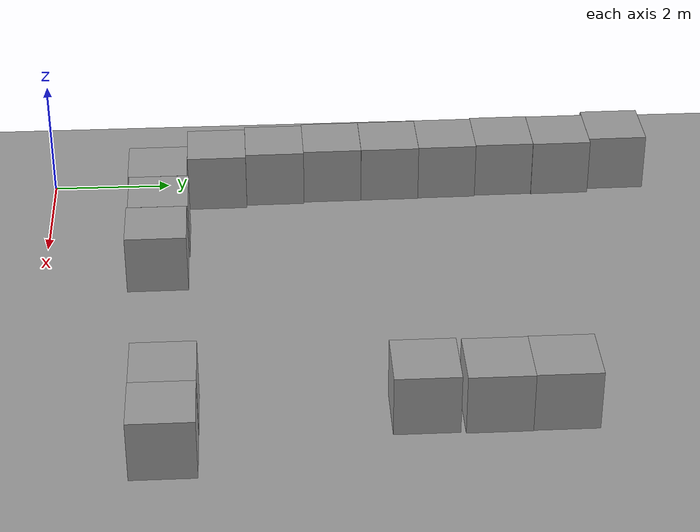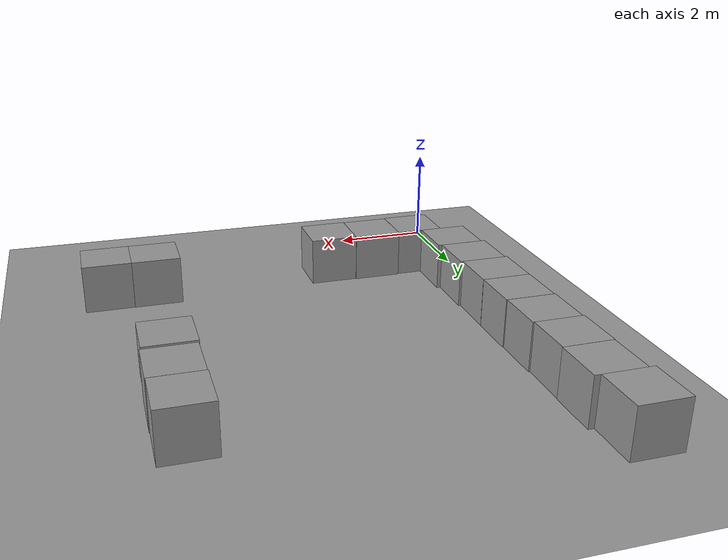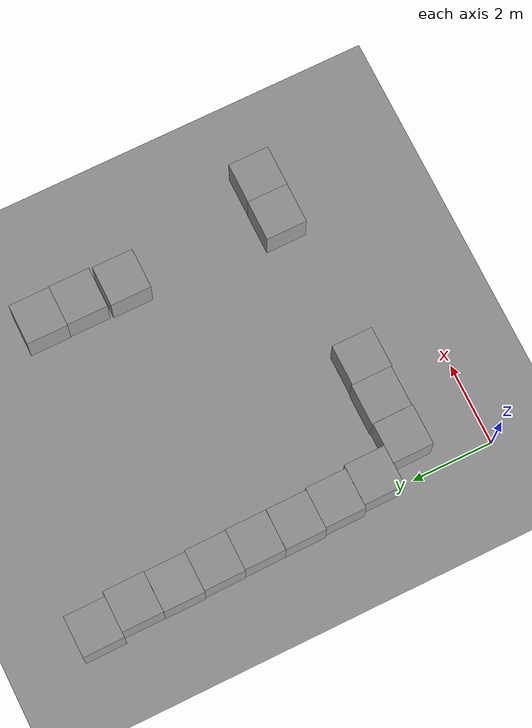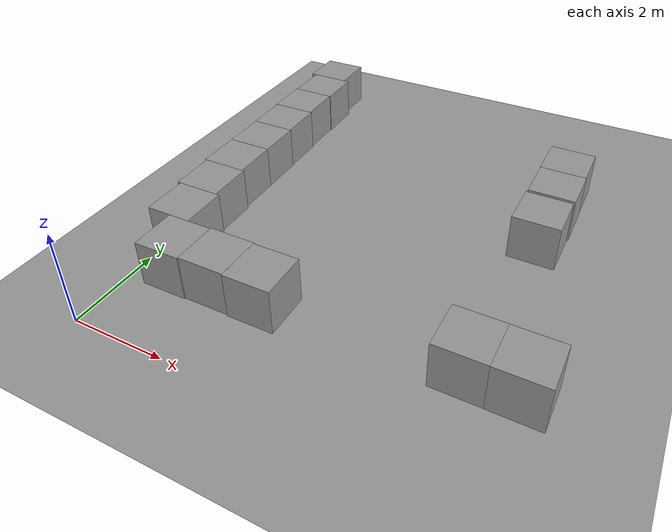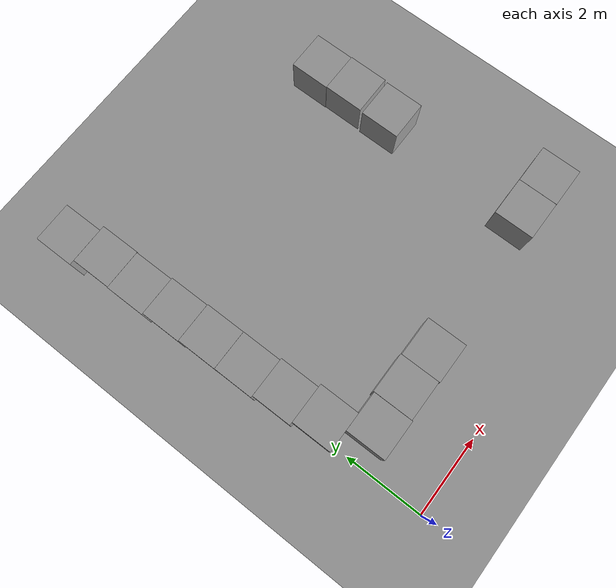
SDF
<sdf version="1.6">
 <world name="default">
  <light name="sun" type="directional">
   <pose>0 0 10 0 -0 0</pose>
   <diffuse>0.8 0.8 0.8 1</diffuse>
   <specular>0.2 0.2 0.2 1</specular>
   <attenuation>
    <range>1000</range>
    <constant>0.9</constant>
    <linear>0.01</linear>
    <quadratic>0.001</quadratic>
   </attenuation>
   <direction>0.5 0.1 -0.9</direction>
  </light>
  <scene><ambient>0.4 0.4 0.4 1</ambient><background>0.7 0.7 0.7 1</background><shadows>1</shadows></scene>
  <physics name="default_physics" default="0" type="ode">
   <max_step_size>0.01</max_step_size>
   <real_time_factor>1</real_time_factor>
   <real_time_update_rate>100</real_time_update_rate>
  </physics>
  <model name="ground_plane_0">
   <static>1</static>
   <link name="link">
    <collision name="collision">
     <geometry><plane><normal>0 0 1</normal><size>100 100</size></plane></geometry>
     <surface><friction><ode><mu>100</mu><mu2>50</mu2></ode></friction></surface>
    </collision>
    <visual name="visual">
     <cast_shadows>0</cast_shadows>
     <geometry><plane><normal>0 0 1</normal><size>100 100</size></plane></geometry>
     <material>
      <script><uri>file://media/materials/scripts/gazebo.material</uri><name>Gazebo/Grey</name></script>
     </material>
    </visual>
    <velocity_decay><linear>0</linear><angular>0</angular></velocity_decay>
   </link>
   <pose>0.497681 0 0 0 -0 0</pose>
  </model>
  <gravity>0 0 -9.8</gravity>
  <magnetic_field>6e-06 2.3e-05 -4.2e-05</magnetic_field>
  <atmosphere type="adiabatic"/>
  <spherical_coordinates>
   <surface_model>EARTH_WGS84</surface_model>
   <latitude_deg>0</latitude_deg>
   <longitude_deg>0</longitude_deg>
   <elevation>0</elevation>
   <heading_deg>0</heading_deg>
  </spherical_coordinates>
  <model name="unit_box">
   <pose>0.89352 1.86727 0.49907 -0.0001 -0 0.006548</pose>
   <link name="link">
    <inertial>
     <mass>1</mass>
     <inertia>
      <ixx>0.166667</ixx>
      <ixy>0</ixy>
      <ixz>0</ixz>
      <iyy>0.166667</iyy>
      <iyz>0</iyz>
      <izz>0.166667</izz>
     </inertia>
    </inertial>
    <collision name="collision"><geometry><box><size>1 1 1</size></box></geometry></collision>
    <visual name="visual">
     <geometry><box><size>1 1 1</size></box></geometry>
     <material>
      <script><name>Gazebo/Grey</name><uri>file://media/materials/scripts/gazebo.material</uri></script>
     </material>
    </visual>
   </link>
  </model>
  <model name="unit_box_0">
   <pose>1.89511 1.89559 0.49967 -0.00066 0 0.004577</pose>
   <link name="link">
    <inertial>
     <mass>1</mass>
     <inertia>
      <ixx>0.166667</ixx>
      <ixy>0</ixy>
      <ixz>0</ixz>
      <iyy>0.166667</iyy>
      <iyz>0</iyz>
      <izz>0.166667</izz>
     </inertia>
    </inertial>
    <collision name="collision"><geometry><box><size>1 1 1</size></box></geometry></collision>
    <visual name="visual">
     <geometry><box><size>1 1 1</size></box></geometry>
     <material>
      <script><name>Gazebo/Grey</name><uri>file://media/materials/scripts/gazebo.material</uri></script>
     </material>
    </visual>
   </link>
  </model>
  <model name="unit_box_1">
   <pose>2.89524 1.8778 0.49907 0.0001 -0 0.00458</pose>
   <link name="link">
    <inertial>
     <mass>1</mass>
     <inertia>
      <ixx>0.166667</ixx>
      <ixy>0</ixy>
      <ixz>0</ixz>
      <iyy>0.166667</iyy>
      <iyz>0</iyz>
      <izz>0.166667</izz>
     </inertia>
    </inertial>
    <collision name="collision"><geometry><box><size>1 1 1</size></box></geometry></collision>
    <visual name="visual">
     <geometry><box><size>1 1 1</size></box></geometry>
     <material>
      <script><name>Gazebo/Grey</name><uri>file://media/materials/scripts/gazebo.material</uri></script>
     </material>
    </visual>
   </link>
  </model>
  <model name="unit_box_2">
   <pose>0.338021 2.86476 0.49907 -0 0.0001 0.004741</pose>
   <link name="link">
    <inertial>
     <mass>1</mass>
     <inertia>
      <ixx>0.166667</ixx>
      <ixy>0</ixy>
      <ixz>0</ixz>
      <iyy>0.166667</iyy>
      <iyz>0</iyz>
      <izz>0.166667</izz>
     </inertia>
    </inertial>
    <collision name="collision"><geometry><box><size>1 1 1</size></box></geometry></collision>
    <visual name="visual">
     <geometry><box><size>1 1 1</size></box></geometry>
     <material>
      <script><name>Gazebo/Grey</name><uri>file://media/materials/scripts/gazebo.material</uri></script>
     </material>
    </visual>
   </link>
  </model>
  <model name="unit_box_3">
   <pose>0.254188 3.86526 0.49912 0 -0 0.004378</pose>
   <link name="link">
    <inertial>
     <mass>1</mass>
     <inertia>
      <ixx>0.166667</ixx>
      <ixy>0</ixy>
      <ixz>0</ixz>
      <iyy>0.166667</iyy>
      <iyz>0</iyz>
      <izz>0.166667</izz>
     </inertia>
    </inertial>
    <collision name="collision"><geometry><box><size>1 1 1</size></box></geometry></collision>
    <visual name="visual">
     <geometry><box><size>1 1 1</size></box></geometry>
     <material>
      <script><name>Gazebo/Grey</name><uri>file://media/materials/scripts/gazebo.material</uri></script>
     </material>
    </visual>
   </link>
  </model>
  <model name="unit_box_4">
   <pose>0.204664 4.86478 0.499716 0.000569 0 0.004364</pose>
   <link name="link">
    <inertial>
     <mass>1</mass>
     <inertia>
      <ixx>0.166667</ixx>
      <ixy>0</ixy>
      <ixz>0</ixz>
      <iyy>0.166667</iyy>
      <iyz>0</iyz>
      <izz>0.166667</izz>
     </inertia>
    </inertial>
    <collision name="collision"><geometry><box><size>1 1 1</size></box></geometry></collision>
    <visual name="visual">
     <geometry><box><size>1 1 1</size></box></geometry>
     <material>
      <script><name>Gazebo/Grey</name><uri>file://media/materials/scripts/gazebo.material</uri></script>
     </material>
    </visual>
   </link>
  </model>
  <model name="unit_box_5">
   <pose>0.196508 5.86583 0.5 0 -0 0.00512</pose>
   <link name="link">
    <inertial>
     <mass>1</mass>
     <inertia>
      <ixx>0.166667</ixx>
      <ixy>0</ixy>
      <ixz>0</ixz>
      <iyy>0.166667</iyy>
      <iyz>0</iyz>
      <izz>0.166667</izz>
     </inertia>
    </inertial>
    <collision name="collision"><geometry><box><size>1 1 1</size></box></geometry></collision>
    <visual name="visual">
     <geometry><box><size>1 1 1</size></box></geometry>
     <material>
      <script><name>Gazebo/Grey</name><uri>file://media/materials/scripts/gazebo.material</uri></script>
     </material>
    </visual>
   </link>
  </model>
  <model name="unit_box_6">
   <pose>0.173817 6.86657 0.49907 -0 0.0001 0.005935</pose>
   <link name="link">
    <inertial>
     <mass>1</mass>
     <inertia>
      <ixx>0.166667</ixx>
      <ixy>0</ixy>
      <ixz>0</ixz>
      <iyy>0.166667</iyy>
      <iyz>0</iyz>
      <izz>0.166667</izz>
     </inertia>
    </inertial>
    <collision name="collision"><geometry><box><size>1 1 1</size></box></geometry></collision>
    <visual name="visual">
     <geometry><box><size>1 1 1</size></box></geometry>
     <material>
      <script><name>Gazebo/Grey</name><uri>file://media/materials/scripts/gazebo.material</uri></script>
     </material>
    </visual>
   </link>
  </model>
  <model name="unit_box_7">
   <pose>0.138877 7.86643 0.49967 -0 0.00066 0.006008</pose>
   <link name="link">
    <inertial>
     <mass>1</mass>
     <inertia>
      <ixx>0.166667</ixx>
      <ixy>0</ixy>
      <ixz>0</ixz>
      <iyy>0.166667</iyy>
      <iyz>0</iyz>
      <izz>0.166667</izz>
     </inertia>
    </inertial>
    <collision name="collision"><geometry><box><size>1 1 1</size></box></geometry></collision>
    <visual name="visual">
     <geometry><box><size>1 1 1</size></box></geometry>
     <material>
      <script><name>Gazebo/Grey</name><uri>file://media/materials/scripts/gazebo.material</uri></script>
     </material>
    </visual>
   </link>
  </model>
  <model name="unit_box_8">
   <pose>0.14413 8.86741 0.49907 -0 0.0001 0.007384</pose>
   <link name="link">
    <inertial>
     <mass>1</mass>
     <inertia>
      <ixx>0.166667</ixx>
      <ixy>0</ixy>
      <ixz>0</ixz>
      <iyy>0.166667</iyy>
      <iyz>0</iyz>
      <izz>0.166667</izz>
     </inertia>
    </inertial>
    <collision name="collision"><geometry><box><size>1 1 1</size></box></geometry></collision>
    <visual name="visual">
     <geometry><box><size>1 1 1</size></box></geometry>
     <material>
      <script><name>Gazebo/Grey</name><uri>file://media/materials/scripts/gazebo.material</uri></script>
     </material>
    </visual>
   </link>
  </model>
  <model name="unit_box_9">
   <pose>0.018069 9.86664 0.49967 0 -0.00066 0.007414</pose>
   <link name="link">
    <inertial>
     <mass>1</mass>
     <inertia>
      <ixx>0.166667</ixx>
      <ixy>0</ixy>
      <ixz>0</ixz>
      <iyy>0.166667</iyy>
      <iyz>0</iyz>
      <izz>0.166667</izz>
     </inertia>
    </inertial>
    <collision name="collision"><geometry><box><size>1 1 1</size></box></geometry></collision>
    <visual name="visual">
     <geometry><box><size>1 1 1</size></box></geometry>
     <material>
      <script><name>Gazebo/Grey</name><uri>file://media/materials/scripts/gazebo.material</uri></script>
     </material>
    </visual>
   </link>
  </model>
  <model name="unit_box_10">
   <pose>6.79439 2.07227 0.49907 -0.0001 -0 3e-06</pose>
   <link name="link">
    <inertial>
     <mass>1</mass>
     <inertia>
      <ixx>0.166667</ixx>
      <ixy>0</ixy>
      <ixz>0</ixz>
      <iyy>0.166667</iyy>
      <iyz>0</iyz>
      <izz>0.166667</izz>
     </inertia>
    </inertial>
    <collision name="collision"><geometry><box><size>1 1 1</size></box></geometry></collision>
    <visual name="visual">
     <geometry><box><size>1 1 1</size></box></geometry>
     <material>
      <script><name>Gazebo/Grey</name><uri>file://media/materials/scripts/gazebo.material</uri></script>
     </material>
    </visual>
   </link>
  </model>
  <model name="unit_box_11">
   <pose>7.7945 2.06832 0.49967 -0.00066 -0 0.000124</pose>
   <link name="link">
    <inertial>
     <mass>1</mass>
     <inertia>
      <ixx>0.166667</ixx>
      <ixy>0</ixy>
      <ixz>0</ixz>
      <iyy>0.166667</iyy>
      <iyz>0</iyz>
      <izz>0.166667</izz>
     </inertia>
    </inertial>
    <collision name="collision"><geometry><box><size>1 1 1</size></box></geometry></collision>
    <visual name="visual">
     <geometry><box><size>1 1 1</size></box></geometry>
     <material>
      <script><name>Gazebo/Grey</name><uri>file://media/materials/scripts/gazebo.material</uri></script>
     </material>
    </visual>
   </link>
  </model>
  <model name="unit_box_12">
   <pose>6.95385 8.00081 0.49912 -0 -0 -0.000138</pose>
   <link name="link">
    <inertial>
     <mass>1</mass>
     <inertia>
      <ixx>0.166667</ixx>
      <ixy>0</ixy>
      <ixz>0</ixz>
      <iyy>0.166667</iyy>
      <iyz>0</iyz>
      <izz>0.166667</izz>
     </inertia>
    </inertial>
    <collision name="collision"><geometry><box><size>1 1 1</size></box></geometry></collision>
    <visual name="visual">
     <geometry><box><size>1 1 1</size></box></geometry>
     <material>
      <script><name>Gazebo/Grey</name><uri>file://media/materials/scripts/gazebo.material</uri></script>
     </material>
    </visual>
   </link>
  </model>
  <model name="unit_box_13">
   <pose>6.94184 5.92565 0.49907 -0.0001 0 0</pose>
   <link name="link">
    <inertial>
     <mass>1</mass>
     <inertia>
      <ixx>0.166667</ixx>
      <ixy>0</ixy>
      <ixz>0</ixz>
      <iyy>0.166667</iyy>
      <iyz>0</iyz>
      <izz>0.166667</izz>
     </inertia>
    </inertial>
    <collision name="collision"><geometry><box><size>1 1 1</size></box></geometry></collision>
    <visual name="visual">
     <geometry><box><size>1 1 1</size></box></geometry>
     <material>
      <script><name>Gazebo/Grey</name><uri>file://media/materials/scripts/gazebo.material</uri></script>
     </material>
    </visual>
   </link>
  </model>
  <model name="unit_box_14">
   <pose>6.96631 7.0007 0.5 0 -0 7.1e-05</pose>
   <link name="link">
    <inertial>
     <mass>1</mass>
     <inertia>
      <ixx>0.166667</ixx>
      <ixy>0</ixy>
      <ixz>0</ixz>
      <iyy>0.166667</iyy>
      <iyz>0</iyz>
      <izz>0.166667</izz>
     </inertia>
    </inertial>
    <collision name="collision"><geometry><box><size>1 1 1</size></box></geometry></collision>
    <visual name="visual">
     <geometry><box><size>1 1 1</size></box></geometry>
     <material>
      <script><name>Gazebo/Grey</name><uri>file://media/materials/scripts/gazebo.material</uri></script>
     </material>
    </visual>
   </link>
  </model>
 </world>
</sdf>
